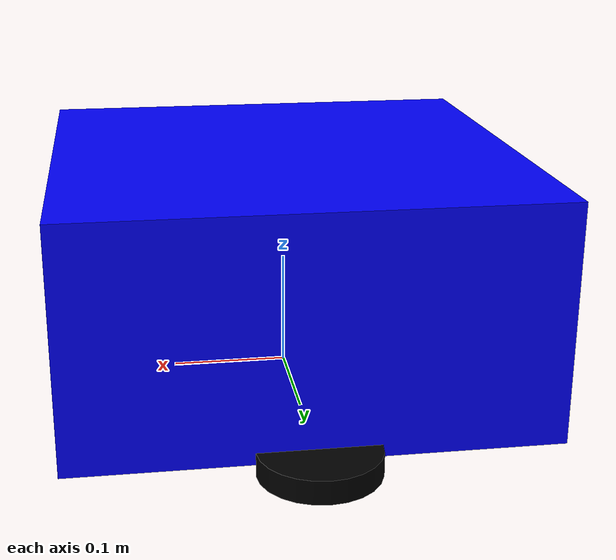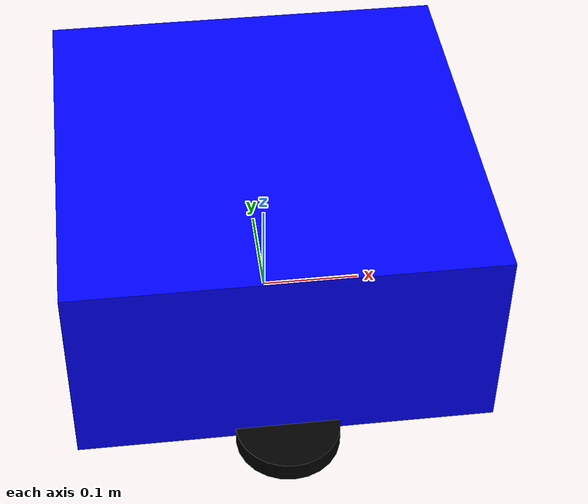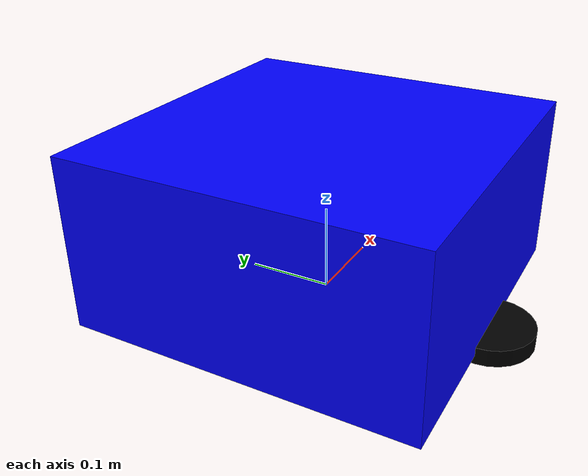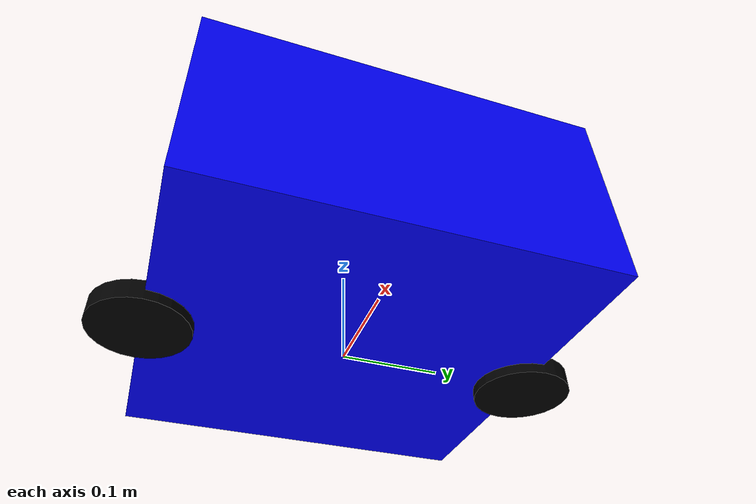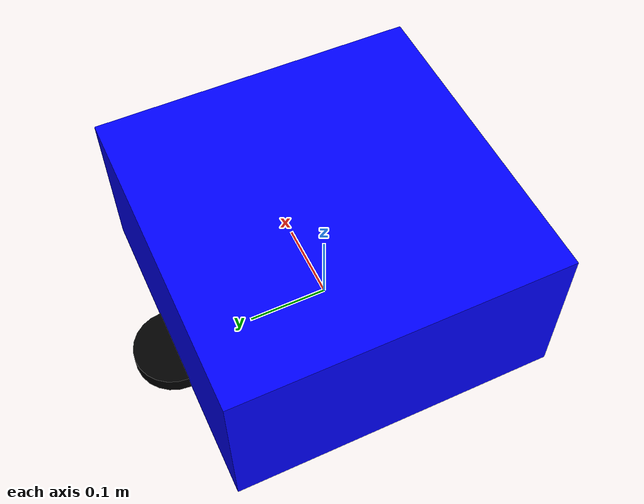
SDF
<?xml version="1.0"?>
<sdf version="1.8">
  <model name="square_robot">
    <static>false</static>

    <!-- Base -->
    <link name="base_link">
      <pose>0 0 0.1 0 0 0</pose>
      <inertial>
        <mass>1.0</mass>
        <inertia>
          <ixx>0.1</ixx>
          <iyy>0.1</iyy>
          <izz>0.1</izz>
          <ixy>0</ixy>
          <ixz>0</ixz>
          <iyz>0</iyz>
        </inertia>
      </inertial>
      <visual name="base_visual">
        <geometry>
          <box>
            <size>0.4 0.4 0.2</size>
          </box>
        </geometry>
        <material>
          <ambient>0 0 1 1</ambient>
          <diffuse>0 0 1 1</diffuse>
        </material>
      </visual>
      <collision name="base_collision">
        <geometry>
          <box>
            <size>0.4 0.4 0.2</size>
          </box>
        </geometry>
      </collision>
    </link>

    <!-- Left wheel -->
    <link name="wheel_left">
      <pose>0 0.2 0 0 0 0</pose>
      <inertial>
        <mass>0.1</mass>
        <inertia>
          <ixx>0.001</ixx>
          <iyy>0.001</iyy>
          <izz>0.001</izz>
          <ixy>0</ixy>
          <ixz>0</ixz>
          <iyz>0</iyz>
        </inertia>
      </inertial>
      <visual name="wheel_left_visual">
        <geometry>
          <cylinder>
            <radius>0.05</radius>
            <length>0.02</length>
          </cylinder>
        </geometry>
        <material>
          <ambient>0 0 0 1</ambient>
          <diffuse>0 0 0 1</diffuse>
        </material>
      </visual>
      <collision name="wheel_left_collision">
        <geometry>
          <cylinder>
            <radius>0.05</radius>
            <length>0.02</length>
          </cylinder>
        </geometry>
      </collision>
    </link>

    <!-- Right wheel -->
    <link name="wheel_right">
      <pose>0 -0.2 0 0 0 0</pose>
      <inertial>
        <mass>0.1</mass>
        <inertia>
          <ixx>0.001</ixx>
          <iyy>0.001</iyy>
          <izz>0.001</izz>
          <ixy>0</ixy>
          <ixz>0</ixz>
          <iyz>0</iyz>
        </inertia>
      </inertial>
      <visual name="wheel_right_visual">
        <geometry>
          <cylinder>
            <radius>0.05</radius>
            <length>0.02</length>
          </cylinder>
        </geometry>
        <material>
          <ambient>0 0 0 1</ambient>
          <diffuse>0 0 0 1</diffuse>
        </material>
      </visual>
      <collision name="wheel_right_collision">
        <geometry>
          <cylinder>
            <radius>0.05</radius>
            <length>0.02</length>
          </cylinder>
        </geometry>
      </collision>
    </link>

    <!-- Joints -->
    <joint name="wheel_left_joint" type="revolute">
      <parent>base_link</parent>
      <child>wheel_left</child>
      <pose>0 0.2 -0.1 0 0 0</pose>
      <axis>
        <xyz>0 1 0</xyz>
        <limit>
          <lower>-1000</lower>
          <upper>1000</upper>
          <effort>5</effort>
          <velocity>10</velocity>
        </limit>
      </axis>
    </joint>

    <joint name="wheel_right_joint" type="revolute">
      <parent>base_link</parent>
      <child>wheel_right</child>
      <pose>0 -0.2 -0.1 0 0 0</pose>
      <axis>
        <xyz>0 1 0</xyz>
        <limit>
          <lower>-1000</lower>
          <upper>1000</upper>
          <effort>5</effort>
          <velocity>10</velocity>
        </limit>
      </axis>
    </joint>

    <!-- Plugin ros2_control -->
    <plugin name="gazebo_ros2_control" filename="libgazebo_ros2_control.so">
      <ros2_control>
        <hardware>
          <plugin>gazebo_ros2_control/DefaultRobotHWSim</plugin>
        </hardware>

        <controller name="diff_drive_controller" type="diff_drive_controller/DiffDriveController">
          <joint_left>wheel_left_joint</joint_left>
          <joint_right>wheel_right_joint</joint_right>
          <wheel_separation>0.4</wheel_separation>
          <wheel_radius>0.05</wheel_radius>
          <cmd_vel_timeout>0.5</cmd_vel_timeout>
          <use_stamped_vel>false</use_stamped_vel>
        </controller>
      </ros2_control>
    </plugin>

  </model>
</sdf>
